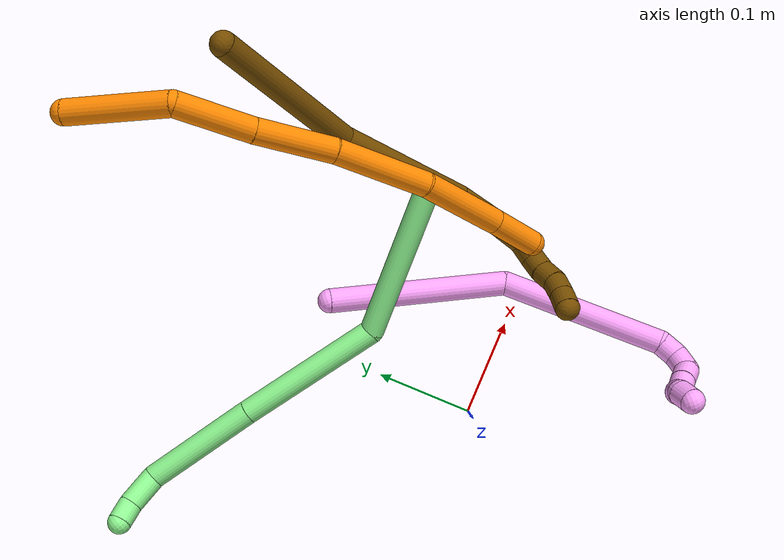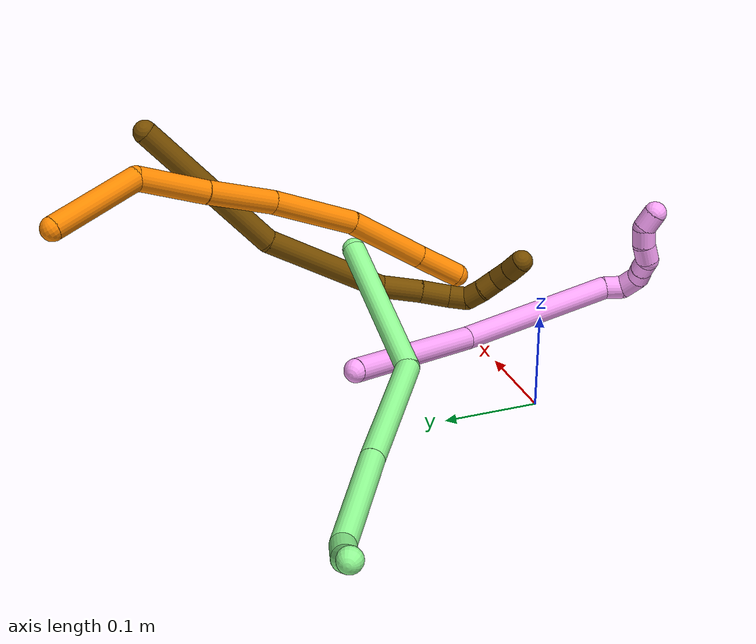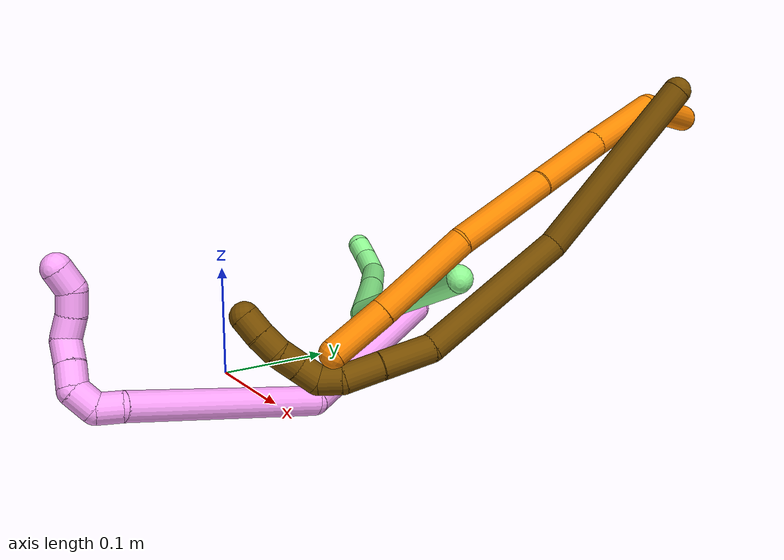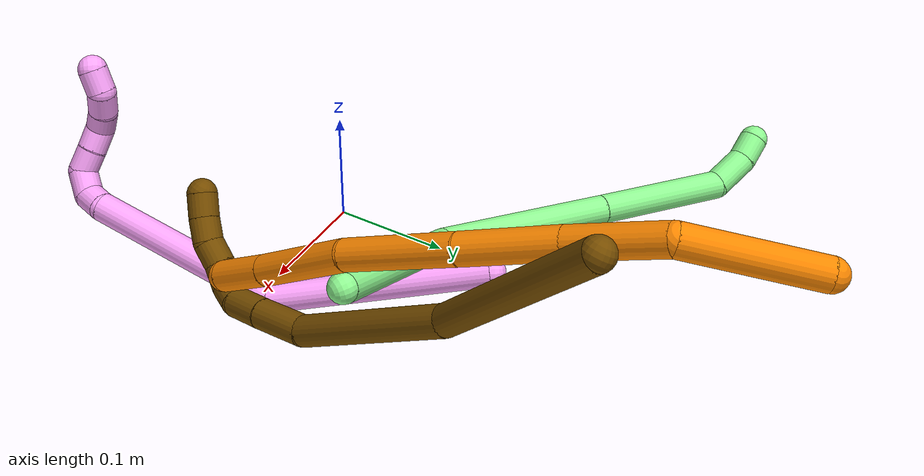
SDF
<sdf version="1.7">
 <world name="default">
  <model name="4">
   <static>0</static>
   <link name="4">
    <collision name="collision-cylinder-e_1_1_4">
     <pose>-0.000357 -0.034923 0.085769 0.386682 -0.003852 -0.000754</pose>
     <geometry><cylinder><radius>0.0125</radius><length>0.185214</length></cylinder></geometry>
     <surface>
      <friction><ode><mu>1.16</mu><mu2>1.16</mu2><slip1>0</slip1><slip2>0</slip2></ode></friction>
      <contact><ode><kp>1e+06</kp><kd>1</kd><max_vel>0</max_vel><min_depth>0.001</min_depth></ode></contact>
     </surface>
    </collision>
    <visual name="visual-cylinder-e_1_1_4">
     <pose>-0.000357 -0.034923 0.085769 0.386682 -0.003852 -0.000754</pose>
     <geometry><cylinder><radius>0.0125</radius><length>0.185214</length></cylinder></geometry>
     <material><ambient>1 0.65098 0.996078 1</ambient></material>
    </visual>
    <collision name="collision-cylinder-e_2_4_5">
     <pose>-0.049015 -0.099882 0.235244 0.440559 -0.601121 -0.138582</pose>
     <geometry><cylinder><radius>0.0125</radius><length>0.170806</length></cylinder></geometry>
     <surface>
      <friction><ode><mu>1.16</mu><mu2>1.16</mu2><slip1>0</slip1><slip2>0</slip2></ode></friction>
      <contact><ode><kp>1e+06</kp><kd>1</kd><max_vel>0</max_vel><min_depth>0.001</min_depth></ode></contact>
     </surface>
    </collision>
    <visual name="visual-cylinder-e_2_4_5">
     <pose>-0.049015 -0.099882 0.235244 0.440559 -0.601121 -0.138582</pose>
     <geometry><cylinder><radius>0.0125</radius><length>0.170806</length></cylinder></geometry>
     <material><ambient>1 0.65098 0.996078 1</ambient></material>
    </visual>
    <collision name="collision-cylinder-e_3_5_6">
     <pose>-0.103871 -0.136141 0.303951 0.893911 -0.687537 -0.339857</pose>
     <geometry><cylinder><radius>0.0125</radius><length>0.020659</length></cylinder></geometry>
     <surface>
      <friction><ode><mu>1.16</mu><mu2>1.16</mu2><slip1>0</slip1><slip2>0</slip2></ode></friction>
      <contact><ode><kp>1e+06</kp><kd>1</kd><max_vel>0</max_vel><min_depth>0.001</min_depth></ode></contact>
     </surface>
    </collision>
    <visual name="visual-cylinder-e_3_5_6">
     <pose>-0.103871 -0.136141 0.303951 0.893911 -0.687537 -0.339857</pose>
     <geometry><cylinder><radius>0.0125</radius><length>0.020659</length></cylinder></geometry>
     <material><ambient>1 0.65098 0.996078 1</ambient></material>
    </visual>
    <collision name="collision-cylinder-e_4_6_7">
     <pose>-0.121323 -0.142412 0.31094 0.024288 -1.39024 -0.020256</pose>
     <geometry><cylinder><radius>0.0125</radius><length>0.022152</length></cylinder></geometry>
     <surface>
      <friction><ode><mu>1.16</mu><mu2>1.16</mu2><slip1>0</slip1><slip2>0</slip2></ode></friction>
      <contact><ode><kp>1e+06</kp><kd>1</kd><max_vel>0</max_vel><min_depth>0.001</min_depth></ode></contact>
     </surface>
    </collision>
    <visual name="visual-cylinder-e_4_6_7">
     <pose>-0.121323 -0.142412 0.31094 0.024288 -1.39024 -0.020256</pose>
     <geometry><cylinder><radius>0.0125</radius><length>0.022152</length></cylinder></geometry>
     <material><ambient>1 0.65098 0.996078 1</ambient></material>
    </visual>
    <collision name="collision-cylinder-e_5_7_8">
     <pose>-0.140436 -0.138038 0.308599 -2.34567 -0.925332 1.74093</pose>
     <geometry><cylinder><radius>0.0125</radius><length>0.020573</length></cylinder></geometry>
     <surface>
      <friction><ode><mu>1.16</mu><mu2>1.16</mu2><slip1>0</slip1><slip2>0</slip2></ode></friction>
      <contact><ode><kp>1e+06</kp><kd>1</kd><max_vel>0</max_vel><min_depth>0.001</min_depth></ode></contact>
     </surface>
    </collision>
    <visual name="visual-cylinder-e_5_7_8">
     <pose>-0.140436 -0.138038 0.308599 -2.34567 -0.925332 1.74093</pose>
     <geometry><cylinder><radius>0.0125</radius><length>0.020573</length></cylinder></geometry>
     <material><ambient>1 0.65098 0.996078 1</ambient></material>
    </visual>
    <collision name="collision-cylinder-e_6_8_9">
     <pose>-0.157282 -0.129908 0.300121 -2.41204 -0.998043 1.9193</pose>
     <geometry><cylinder><radius>0.0125</radius><length>0.020535</length></cylinder></geometry>
     <surface>
      <friction><ode><mu>1.16</mu><mu2>1.16</mu2><slip1>0</slip1><slip2>0</slip2></ode></friction>
      <contact><ode><kp>1e+06</kp><kd>1</kd><max_vel>0</max_vel><min_depth>0.001</min_depth></ode></contact>
     </surface>
    </collision>
    <visual name="visual-cylinder-e_6_8_9">
     <pose>-0.157282 -0.129908 0.300121 -2.41204 -0.998043 1.9193</pose>
     <geometry><cylinder><radius>0.0125</radius><length>0.020535</length></cylinder></geometry>
     <material><ambient>1 0.65098 0.996078 1</ambient></material>
    </visual>
    <collision name="collision-cylinder-e_7_9_10">
     <pose>-0.170821 -0.11754 0.294761 -1.70991 -0.511629 0.584228</pose>
     <geometry><cylinder><radius>0.0125</radius><length>0.020056</length></cylinder></geometry>
     <surface>
      <friction><ode><mu>1.16</mu><mu2>1.16</mu2><slip1>0</slip1><slip2>0</slip2></ode></friction>
      <contact><ode><kp>1e+06</kp><kd>1</kd><max_vel>0</max_vel><min_depth>0.001</min_depth></ode></contact>
     </surface>
    </collision>
    <visual name="visual-cylinder-e_7_9_10">
     <pose>-0.170821 -0.11754 0.294761 -1.70991 -0.511629 0.584228</pose>
     <geometry><cylinder><radius>0.0125</radius><length>0.020056</length></cylinder></geometry>
     <material><ambient>1 0.65098 0.996078 1</ambient></material>
    </visual>
    <collision name="collision-cylinder-e_8_10_11">
     <pose>-0.181893 -0.101018 0.294038 -1.50864 -0.663879 0.626485</pose>
     <geometry><cylinder><radius>0.0125</radius><length>0.020004</length></cylinder></geometry>
     <surface>
      <friction><ode><mu>1.16</mu><mu2>1.16</mu2><slip1>0</slip1><slip2>0</slip2></ode></friction>
      <contact><ode><kp>1e+06</kp><kd>1</kd><max_vel>0</max_vel><min_depth>0.001</min_depth></ode></contact>
     </surface>
    </collision>
    <visual name="visual-cylinder-e_8_10_11">
     <pose>-0.181893 -0.101018 0.294038 -1.50864 -0.663879 0.626485</pose>
     <geometry><cylinder><radius>0.0125</radius><length>0.020004</length></cylinder></geometry>
     <material><ambient>1 0.65098 0.996078 1</ambient></material>
    </visual>
    <collision name="collision-cylinder-e_9_11_2">
     <pose>-0.196982 -0.089917 0.297666 -0.800947 -1.10291 0.509496</pose>
     <geometry><cylinder><radius>0.0125</radius><length>0.020001</length></cylinder></geometry>
     <surface>
      <friction><ode><mu>1.16</mu><mu2>1.16</mu2><slip1>0</slip1><slip2>0</slip2></ode></friction>
      <contact><ode><kp>1e+06</kp><kd>1</kd><max_vel>0</max_vel><min_depth>0.001</min_depth></ode></contact>
     </surface>
    </collision>
    <visual name="visual-cylinder-e_9_11_2">
     <pose>-0.196982 -0.089917 0.297666 -0.800947 -1.10291 0.509496</pose>
     <geometry><cylinder><radius>0.0125</radius><length>0.020001</length></cylinder></geometry>
     <material><ambient>1 0.65098 0.996078 1</ambient></material>
    </visual>
    <collision name="collision-sphere-2">
     <pose>-0.205907 -0.086679 0.300805 0 -0 0</pose>
     <geometry><sphere><radius>0.0125</radius></sphere></geometry>
     <surface>
      <friction><ode><mu>1.16</mu><mu2>1.16</mu2><slip1>0</slip1><slip2>0</slip2></ode></friction>
      <contact><ode><kp>1e+06</kp><kd>1</kd><max_vel>0</max_vel><min_depth>0.001</min_depth></ode></contact>
     </surface>
    </collision>
    <visual name="visual-sphere-2">
     <pose>-0.205907 -0.086679 0.300805 0 -0 0</pose>
     <geometry><sphere><radius>0.0125</radius></sphere></geometry>
     <material><ambient>1 0.65098 0.996078 1</ambient></material>
    </visual>
    <collision name="collision-sphere-11">
     <pose>-0.188056 -0.093156 0.294527 0 -0 0</pose>
     <geometry><sphere><radius>0.0125</radius></sphere></geometry>
     <surface>
      <friction><ode><mu>1.16</mu><mu2>1.16</mu2><slip1>0</slip1><slip2>0</slip2></ode></friction>
      <contact><ode><kp>1e+06</kp><kd>1</kd><max_vel>0</max_vel><min_depth>0.001</min_depth></ode></contact>
     </surface>
    </collision>
    <visual name="visual-sphere-11">
     <pose>-0.188056 -0.093156 0.294527 0 -0 0</pose>
     <geometry><sphere><radius>0.0125</radius></sphere></geometry>
     <material><ambient>1 0.65098 0.996078 1</ambient></material>
    </visual>
    <collision name="collision-sphere-10">
     <pose>-0.17573 -0.10888 0.293548 0 -0 0</pose>
     <geometry><sphere><radius>0.0125</radius></sphere></geometry>
     <surface>
      <friction><ode><mu>1.16</mu><mu2>1.16</mu2><slip1>0</slip1><slip2>0</slip2></ode></friction>
      <contact><ode><kp>1e+06</kp><kd>1</kd><max_vel>0</max_vel><min_depth>0.001</min_depth></ode></contact>
     </surface>
    </collision>
    <visual name="visual-sphere-10">
     <pose>-0.17573 -0.10888 0.293548 0 -0 0</pose>
     <geometry><sphere><radius>0.0125</radius></sphere></geometry>
     <material><ambient>1 0.65098 0.996078 1</ambient></material>
    </visual>
    <collision name="collision-sphere-9">
     <pose>-0.165911 -0.126199 0.295973 0 -0 0</pose>
     <geometry><sphere><radius>0.0125</radius></sphere></geometry>
     <surface>
      <friction><ode><mu>1.16</mu><mu2>1.16</mu2><slip1>0</slip1><slip2>0</slip2></ode></friction>
      <contact><ode><kp>1e+06</kp><kd>1</kd><max_vel>0</max_vel><min_depth>0.001</min_depth></ode></contact>
     </surface>
    </collision>
    <visual name="visual-sphere-9">
     <pose>-0.165911 -0.126199 0.295973 0 -0 0</pose>
     <geometry><sphere><radius>0.0125</radius></sphere></geometry>
     <material><ambient>1 0.65098 0.996078 1</ambient></material>
    </visual>
    <collision name="collision-sphere-4">
     <pose>-0.000713 -0.069847 0.171538 0 -0 0</pose>
     <geometry><sphere><radius>0.0125</radius></sphere></geometry>
     <surface>
      <friction><ode><mu>1.16</mu><mu2>1.16</mu2><slip1>0</slip1><slip2>0</slip2></ode></friction>
      <contact><ode><kp>1e+06</kp><kd>1</kd><max_vel>0</max_vel><min_depth>0.001</min_depth></ode></contact>
     </surface>
    </collision>
    <visual name="visual-sphere-4">
     <pose>-0.000713 -0.069847 0.171538 0 -0 0</pose>
     <geometry><sphere><radius>0.0125</radius></sphere></geometry>
     <material><ambient>1 0.65098 0.996078 1</ambient></material>
    </visual>
    <collision name="collision-sphere-1">
     <geometry><sphere><radius>0.0125</radius></sphere></geometry>
     <surface>
      <friction><ode><mu>1.16</mu><mu2>1.16</mu2><slip1>0</slip1><slip2>0</slip2></ode></friction>
      <contact><ode><kp>1e+06</kp><kd>1</kd><max_vel>0</max_vel><min_depth>0.001</min_depth></ode></contact>
     </surface>
    </collision>
    <visual name="visual-sphere-1">
     <geometry><sphere><radius>0.0125</radius></sphere></geometry>
     <material><ambient>1 0.65098 0.996078 1</ambient></material>
    </visual>
    <collision name="collision-sphere-8">
     <pose>-0.148653 -0.133617 0.304269 0 -0 0</pose>
     <geometry><sphere><radius>0.0125</radius></sphere></geometry>
     <surface>
      <friction><ode><mu>1.16</mu><mu2>1.16</mu2><slip1>0</slip1><slip2>0</slip2></ode></friction>
      <contact><ode><kp>1e+06</kp><kd>1</kd><max_vel>0</max_vel><min_depth>0.001</min_depth></ode></contact>
     </surface>
    </collision>
    <visual name="visual-sphere-8">
     <pose>-0.148653 -0.133617 0.304269 0 -0 0</pose>
     <geometry><sphere><radius>0.0125</radius></sphere></geometry>
     <material><ambient>1 0.65098 0.996078 1</ambient></material>
    </visual>
    <collision name="collision-sphere-5">
     <pose>-0.097316 -0.129918 0.298951 0 -0 0</pose>
     <geometry><sphere><radius>0.0125</radius></sphere></geometry>
     <surface>
      <friction><ode><mu>1.16</mu><mu2>1.16</mu2><slip1>0</slip1><slip2>0</slip2></ode></friction>
      <contact><ode><kp>1e+06</kp><kd>1</kd><max_vel>0</max_vel><min_depth>0.001</min_depth></ode></contact>
     </surface>
    </collision>
    <visual name="visual-sphere-5">
     <pose>-0.097316 -0.129918 0.298951 0 -0 0</pose>
     <geometry><sphere><radius>0.0125</radius></sphere></geometry>
     <material><ambient>1 0.65098 0.996078 1</ambient></material>
    </visual>
    <collision name="collision-sphere-6">
     <pose>-0.110427 -0.142363 0.308951 0 -0 0</pose>
     <geometry><sphere><radius>0.0125</radius></sphere></geometry>
     <surface>
      <friction><ode><mu>1.16</mu><mu2>1.16</mu2><slip1>0</slip1><slip2>0</slip2></ode></friction>
      <contact><ode><kp>1e+06</kp><kd>1</kd><max_vel>0</max_vel><min_depth>0.001</min_depth></ode></contact>
     </surface>
    </collision>
    <visual name="visual-sphere-6">
     <pose>-0.110427 -0.142363 0.308951 0 -0 0</pose>
     <geometry><sphere><radius>0.0125</radius></sphere></geometry>
     <material><ambient>1 0.65098 0.996078 1</ambient></material>
    </visual>
    <collision name="collision-sphere-7">
     <pose>-0.132219 -0.14246 0.312928 0 -0 0</pose>
     <geometry><sphere><radius>0.0125</radius></sphere></geometry>
     <surface>
      <friction><ode><mu>1.16</mu><mu2>1.16</mu2><slip1>0</slip1><slip2>0</slip2></ode></friction>
      <contact><ode><kp>1e+06</kp><kd>1</kd><max_vel>0</max_vel><min_depth>0.001</min_depth></ode></contact>
     </surface>
    </collision>
    <visual name="visual-sphere-7">
     <pose>-0.132219 -0.14246 0.312928 0 -0 0</pose>
     <geometry><sphere><radius>0.0125</radius></sphere></geometry>
     <material><ambient>1 0.65098 0.996078 1</ambient></material>
    </visual>
    <inertial>
     <pose>-0.06079 -0.08236 0.198986 0 -0 0</pose>
     <mass>0.5</mass>
     <inertia>
      <ixx>0.000823</ixx>
      <ixy>0</ixy>
      <ixz>0</ixz>
      <iyy>0.000844</iyy>
      <iyz>0</iyz>
      <izz>0.00062</izz>
     </inertia>
    </inertial>
   </link>
   <pose>0.051737 0.177241 0.04627 1.43586 0.713439 0.669869</pose>
  </model>
  <model name="12">
   <static>0</static>
   <link name="12">
    <collision name="collision-cylinder-e_1_1_4">
     <pose>0.013665 -0.06474 -0.057829 2.29987 0.156132 0.346031</pose>
     <geometry><cylinder><radius>0.0125</radius><length>0.175752</length></cylinder></geometry>
     <surface>
      <friction><ode><mu>1.16</mu><mu2>1.16</mu2><slip1>0</slip1><slip2>0</slip2></ode></friction>
      <contact><ode><kp>1e+06</kp><kd>1</kd><max_vel>0</max_vel><min_depth>0.001</min_depth></ode></contact>
     </surface>
    </collision>
    <visual name="visual-cylinder-e_1_1_4">
     <pose>0.013665 -0.06474 -0.057829 2.29987 0.156132 0.346031</pose>
     <geometry><cylinder><radius>0.0125</radius><length>0.175752</length></cylinder></geometry>
     <material><ambient>0.466667 0.301961 0 1</ambient></material>
    </visual>
    <collision name="collision-cylinder-e_2_4_5">
     <pose>0.060432 -0.179286 -0.156459 2.25714 0.474898 0.944998</pose>
     <geometry><cylinder><radius>0.0125</radius><length>0.144792</length></cylinder></geometry>
     <surface>
      <friction><ode><mu>1.16</mu><mu2>1.16</mu2><slip1>0</slip1><slip2>0</slip2></ode></friction>
      <contact><ode><kp>1e+06</kp><kd>1</kd><max_vel>0</max_vel><min_depth>0.001</min_depth></ode></contact>
     </surface>
    </collision>
    <visual name="visual-cylinder-e_2_4_5">
     <pose>0.060432 -0.179286 -0.156459 2.25714 0.474898 0.944998</pose>
     <geometry><cylinder><radius>0.0125</radius><length>0.144792</length></cylinder></geometry>
     <material><ambient>0.466667 0.301961 0 1</ambient></material>
    </visual>
    <collision name="collision-cylinder-e_3_5_6">
     <pose>0.107313 -0.246529 -0.203212 1.89976 0.642085 0.870366</pose>
     <geometry><cylinder><radius>0.0125</radius><length>0.046012</length></cylinder></geometry>
     <surface>
      <friction><ode><mu>1.16</mu><mu2>1.16</mu2><slip1>0</slip1><slip2>0</slip2></ode></friction>
      <contact><ode><kp>1e+06</kp><kd>1</kd><max_vel>0</max_vel><min_depth>0.001</min_depth></ode></contact>
     </surface>
    </collision>
    <visual name="visual-cylinder-e_3_5_6">
     <pose>0.107313 -0.246529 -0.203212 1.89976 0.642085 0.870366</pose>
     <geometry><cylinder><radius>0.0125</radius><length>0.046012</length></cylinder></geometry>
     <material><ambient>0.466667 0.301961 0 1</ambient></material>
    </visual>
    <collision name="collision-cylinder-e_4_6_7">
     <pose>0.130197 -0.27721 -0.213286 1.87248 0.580931 0.771466</pose>
     <geometry><cylinder><radius>0.0125</radius><length>0.033187</length></cylinder></geometry>
     <surface>
      <friction><ode><mu>1.16</mu><mu2>1.16</mu2><slip1>0</slip1><slip2>0</slip2></ode></friction>
      <contact><ode><kp>1e+06</kp><kd>1</kd><max_vel>0</max_vel><min_depth>0.001</min_depth></ode></contact>
     </surface>
    </collision>
    <visual name="visual-cylinder-e_4_6_7">
     <pose>0.130197 -0.27721 -0.213286 1.87248 0.580931 0.771466</pose>
     <geometry><cylinder><radius>0.0125</radius><length>0.033187</length></cylinder></geometry>
     <material><ambient>0.466667 0.301961 0 1</ambient></material>
    </visual>
    <collision name="collision-cylinder-e_5_7_8">
     <pose>0.143694 -0.299509 -0.216268 1.44557 0.448452 0.397005</pose>
     <geometry><cylinder><radius>0.0125</radius><length>0.020255</length></cylinder></geometry>
     <surface>
      <friction><ode><mu>1.16</mu><mu2>1.16</mu2><slip1>0</slip1><slip2>0</slip2></ode></friction>
      <contact><ode><kp>1e+06</kp><kd>1</kd><max_vel>0</max_vel><min_depth>0.001</min_depth></ode></contact>
     </surface>
    </collision>
    <visual name="visual-cylinder-e_5_7_8">
     <pose>0.143694 -0.299509 -0.216268 1.44557 0.448452 0.397005</pose>
     <geometry><cylinder><radius>0.0125</radius><length>0.020255</length></cylinder></geometry>
     <material><ambient>0.466667 0.301961 0 1</ambient></material>
    </visual>
    <collision name="collision-cylinder-e_6_8_9">
     <pose>0.154217 -0.313756 -0.209174 0.717138 0.66003 0.255352</pose>
     <geometry><cylinder><radius>0.0125</radius><length>0.020001</length></cylinder></geometry>
     <surface>
      <friction><ode><mu>1.16</mu><mu2>1.16</mu2><slip1>0</slip1><slip2>0</slip2></ode></friction>
      <contact><ode><kp>1e+06</kp><kd>1</kd><max_vel>0</max_vel><min_depth>0.001</min_depth></ode></contact>
     </surface>
    </collision>
    <visual name="visual-cylinder-e_6_8_9">
     <pose>0.154217 -0.313756 -0.209174 0.717138 0.66003 0.255352</pose>
     <geometry><cylinder><radius>0.0125</radius><length>0.020001</length></cylinder></geometry>
     <material><ambient>0.466667 0.301961 0 1</ambient></material>
    </visual>
    <collision name="collision-cylinder-e_7_9_10">
     <pose>0.167749 -0.323059 -0.197895 0.657381 0.83312 0.299548</pose>
     <geometry><cylinder><radius>0.0125</radius><length>0.02</length></cylinder></geometry>
     <surface>
      <friction><ode><mu>1.16</mu><mu2>1.16</mu2><slip1>0</slip1><slip2>0</slip2></ode></friction>
      <contact><ode><kp>1e+06</kp><kd>1</kd><max_vel>0</max_vel><min_depth>0.001</min_depth></ode></contact>
     </surface>
    </collision>
    <visual name="visual-cylinder-e_7_9_10">
     <pose>0.167749 -0.323059 -0.197895 0.657381 0.83312 0.299548</pose>
     <geometry><cylinder><radius>0.0125</radius><length>0.02</length></cylinder></geometry>
     <material><ambient>0.466667 0.301961 0 1</ambient></material>
    </visual>
    <collision name="collision-cylinder-e_8_10_11">
     <pose>0.180246 -0.331584 -0.185186 0.538889 0.534745 0.15101</pose>
     <geometry><cylinder><radius>0.0125</radius><length>0.02</length></cylinder></geometry>
     <surface>
      <friction><ode><mu>1.16</mu><mu2>1.16</mu2><slip1>0</slip1><slip2>0</slip2></ode></friction>
      <contact><ode><kp>1e+06</kp><kd>1</kd><max_vel>0</max_vel><min_depth>0.001</min_depth></ode></contact>
     </surface>
    </collision>
    <visual name="visual-cylinder-e_8_10_11">
     <pose>0.180246 -0.331584 -0.185186 0.538889 0.534745 0.15101</pose>
     <geometry><cylinder><radius>0.0125</radius><length>0.02</length></cylinder></geometry>
     <material><ambient>0.466667 0.301961 0 1</ambient></material>
    </visual>
    <collision name="collision-cylinder-e_9_11_2">
     <pose>0.189822 -0.339725 -0.169674 0.429841 0.46447 0.103161</pose>
     <geometry><cylinder><radius>0.0125</radius><length>0.02</length></cylinder></geometry>
     <surface>
      <friction><ode><mu>1.16</mu><mu2>1.16</mu2><slip1>0</slip1><slip2>0</slip2></ode></friction>
      <contact><ode><kp>1e+06</kp><kd>1</kd><max_vel>0</max_vel><min_depth>0.001</min_depth></ode></contact>
     </surface>
    </collision>
    <visual name="visual-cylinder-e_9_11_2">
     <pose>0.189822 -0.339725 -0.169674 0.429841 0.46447 0.103161</pose>
     <geometry><cylinder><radius>0.0125</radius><length>0.02</length></cylinder></geometry>
     <material><ambient>0.466667 0.301961 0 1</ambient></material>
    </visual>
    <collision name="collision-sphere-2">
     <pose>0.194301 -0.343451 -0.161547 0 -0 0</pose>
     <geometry><sphere><radius>0.0125</radius></sphere></geometry>
     <surface>
      <friction><ode><mu>1.16</mu><mu2>1.16</mu2><slip1>0</slip1><slip2>0</slip2></ode></friction>
      <contact><ode><kp>1e+06</kp><kd>1</kd><max_vel>0</max_vel><min_depth>0.001</min_depth></ode></contact>
     </surface>
    </collision>
    <visual name="visual-sphere-2">
     <pose>0.194301 -0.343451 -0.161547 0 -0 0</pose>
     <geometry><sphere><radius>0.0125</radius></sphere></geometry>
     <material><ambient>0.466667 0.301961 0 1</ambient></material>
    </visual>
    <collision name="collision-sphere-11">
     <pose>0.185342 -0.335999 -0.177802 0 -0 0</pose>
     <geometry><sphere><radius>0.0125</radius></sphere></geometry>
     <surface>
      <friction><ode><mu>1.16</mu><mu2>1.16</mu2><slip1>0</slip1><slip2>0</slip2></ode></friction>
      <contact><ode><kp>1e+06</kp><kd>1</kd><max_vel>0</max_vel><min_depth>0.001</min_depth></ode></contact>
     </surface>
    </collision>
    <visual name="visual-sphere-11">
     <pose>0.185342 -0.335999 -0.177802 0 -0 0</pose>
     <geometry><sphere><radius>0.0125</radius></sphere></geometry>
     <material><ambient>0.466667 0.301961 0 1</ambient></material>
    </visual>
    <collision name="collision-sphere-10">
     <pose>0.17515 -0.327168 -0.192571 0 -0 0</pose>
     <geometry><sphere><radius>0.0125</radius></sphere></geometry>
     <surface>
      <friction><ode><mu>1.16</mu><mu2>1.16</mu2><slip1>0</slip1><slip2>0</slip2></ode></friction>
      <contact><ode><kp>1e+06</kp><kd>1</kd><max_vel>0</max_vel><min_depth>0.001</min_depth></ode></contact>
     </surface>
    </collision>
    <visual name="visual-sphere-10">
     <pose>0.17515 -0.327168 -0.192571 0 -0 0</pose>
     <geometry><sphere><radius>0.0125</radius></sphere></geometry>
     <material><ambient>0.466667 0.301961 0 1</ambient></material>
    </visual>
    <collision name="collision-sphere-9">
     <pose>0.160349 -0.318949 -0.203219 0 -0 0</pose>
     <geometry><sphere><radius>0.0125</radius></sphere></geometry>
     <surface>
      <friction><ode><mu>1.16</mu><mu2>1.16</mu2><slip1>0</slip1><slip2>0</slip2></ode></friction>
      <contact><ode><kp>1e+06</kp><kd>1</kd><max_vel>0</max_vel><min_depth>0.001</min_depth></ode></contact>
     </surface>
    </collision>
    <visual name="visual-sphere-9">
     <pose>0.160349 -0.318949 -0.203219 0 -0 0</pose>
     <geometry><sphere><radius>0.0125</radius></sphere></geometry>
     <material><ambient>0.466667 0.301961 0 1</ambient></material>
    </visual>
    <collision name="collision-sphere-4">
     <pose>0.027329 -0.12948 -0.115658 0 -0 0</pose>
     <geometry><sphere><radius>0.0125</radius></sphere></geometry>
     <surface>
      <friction><ode><mu>1.16</mu><mu2>1.16</mu2><slip1>0</slip1><slip2>0</slip2></ode></friction>
      <contact><ode><kp>1e+06</kp><kd>1</kd><max_vel>0</max_vel><min_depth>0.001</min_depth></ode></contact>
     </surface>
    </collision>
    <visual name="visual-sphere-4">
     <pose>0.027329 -0.12948 -0.115658 0 -0 0</pose>
     <geometry><sphere><radius>0.0125</radius></sphere></geometry>
     <material><ambient>0.466667 0.301961 0 1</ambient></material>
    </visual>
    <collision name="collision-sphere-1">
     <geometry><sphere><radius>0.0125</radius></sphere></geometry>
     <surface>
      <friction><ode><mu>1.16</mu><mu2>1.16</mu2><slip1>0</slip1><slip2>0</slip2></ode></friction>
      <contact><ode><kp>1e+06</kp><kd>1</kd><max_vel>0</max_vel><min_depth>0.001</min_depth></ode></contact>
     </surface>
    </collision>
    <visual name="visual-sphere-1">
     <geometry><sphere><radius>0.0125</radius></sphere></geometry>
     <material><ambient>0.466667 0.301961 0 1</ambient></material>
    </visual>
    <collision name="collision-sphere-8">
     <pose>0.148085 -0.308564 -0.215128 0 -0 0</pose>
     <geometry><sphere><radius>0.0125</radius></sphere></geometry>
     <surface>
      <friction><ode><mu>1.16</mu><mu2>1.16</mu2><slip1>0</slip1><slip2>0</slip2></ode></friction>
      <contact><ode><kp>1e+06</kp><kd>1</kd><max_vel>0</max_vel><min_depth>0.001</min_depth></ode></contact>
     </surface>
    </collision>
    <visual name="visual-sphere-8">
     <pose>0.148085 -0.308564 -0.215128 0 -0 0</pose>
     <geometry><sphere><radius>0.0125</radius></sphere></geometry>
     <material><ambient>0.466667 0.301961 0 1</ambient></material>
    </visual>
    <collision name="collision-sphere-5">
     <pose>0.093535 -0.229092 -0.19726 0 -0 0</pose>
     <geometry><sphere><radius>0.0125</radius></sphere></geometry>
     <surface>
      <friction><ode><mu>1.16</mu><mu2>1.16</mu2><slip1>0</slip1><slip2>0</slip2></ode></friction>
      <contact><ode><kp>1e+06</kp><kd>1</kd><max_vel>0</max_vel><min_depth>0.001</min_depth></ode></contact>
     </surface>
    </collision>
    <visual name="visual-sphere-5">
     <pose>0.093535 -0.229092 -0.19726 0 -0 0</pose>
     <geometry><sphere><radius>0.0125</radius></sphere></geometry>
     <material><ambient>0.466667 0.301961 0 1</ambient></material>
    </visual>
    <collision name="collision-sphere-6">
     <pose>0.12109 -0.263965 -0.209165 0 -0 0</pose>
     <geometry><sphere><radius>0.0125</radius></sphere></geometry>
     <surface>
      <friction><ode><mu>1.16</mu><mu2>1.16</mu2><slip1>0</slip1><slip2>0</slip2></ode></friction>
      <contact><ode><kp>1e+06</kp><kd>1</kd><max_vel>0</max_vel><min_depth>0.001</min_depth></ode></contact>
     </surface>
    </collision>
    <visual name="visual-sphere-6">
     <pose>0.12109 -0.263965 -0.209165 0 -0 0</pose>
     <geometry><sphere><radius>0.0125</radius></sphere></geometry>
     <material><ambient>0.466667 0.301961 0 1</ambient></material>
    </visual>
    <collision name="collision-sphere-7">
     <pose>0.139303 -0.290455 -0.217408 0 -0 0</pose>
     <geometry><sphere><radius>0.0125</radius></sphere></geometry>
     <surface>
      <friction><ode><mu>1.16</mu><mu2>1.16</mu2><slip1>0</slip1><slip2>0</slip2></ode></friction>
      <contact><ode><kp>1e+06</kp><kd>1</kd><max_vel>0</max_vel><min_depth>0.001</min_depth></ode></contact>
     </surface>
    </collision>
    <visual name="visual-sphere-7">
     <pose>0.139303 -0.290455 -0.217408 0 -0 0</pose>
     <geometry><sphere><radius>0.0125</radius></sphere></geometry>
     <material><ambient>0.466667 0.301961 0 1</ambient></material>
    </visual>
    <inertial>
     <pose>0.074323 -0.18022 -0.137731 0 -0 0</pose>
     <mass>0.5</mass>
     <inertia><ixx>0.00094</ixx><ixy>0</ixy><ixz>0</ixz><iyy>4e-05</iyy><iyz>0</iyz><izz>0.000317</izz></inertia>
    </inertial>
   </link>
   <pose>0.224576 0.339384 0.261055 0.400821 -0.464106 -1.09657</pose>
  </model>
  <model name="13">
   <static>0</static>
   <link name="13">
    <collision name="collision-cylinder-e_1_1_4">
     <pose>-0.04841 0.025291 0.062239 -0.385973 -0.624403 0.125978</pose>
     <geometry><cylinder><radius>0.0125</radius><length>0.165613</length></cylinder></geometry>
     <surface>
      <friction><ode><mu>1.16</mu><mu2>1.16</mu2><slip1>0</slip1><slip2>0</slip2></ode></friction>
      <contact><ode><kp>1e+06</kp><kd>1</kd><max_vel>0</max_vel><min_depth>0.001</min_depth></ode></contact>
     </surface>
    </collision>
    <visual name="visual-cylinder-e_1_1_4">
     <pose>-0.04841 0.025291 0.062239 -0.385973 -0.624403 0.125978</pose>
     <geometry><cylinder><radius>0.0125</radius><length>0.165613</length></cylinder></geometry>
     <material><ambient>0.564706 0.984314 0.572549 1</ambient></material>
    </visual>
    <collision name="collision-cylinder-e_2_4_5">
     <pose>-0.095248 0.066808 0.19942 -0.213218 0.020493 -0.002193</pose>
     <geometry><cylinder><radius>0.0125</radius><length>0.153387</length></cylinder></geometry>
     <surface>
      <friction><ode><mu>1.16</mu><mu2>1.16</mu2><slip1>0</slip1><slip2>0</slip2></ode></friction>
      <contact><ode><kp>1e+06</kp><kd>1</kd><max_vel>0</max_vel><min_depth>0.001</min_depth></ode></contact>
     </surface>
    </collision>
    <visual name="visual-cylinder-e_2_4_5">
     <pose>-0.095248 0.066808 0.19942 -0.213218 0.020493 -0.002193</pose>
     <geometry><cylinder><radius>0.0125</radius><length>0.153387</length></cylinder></geometry>
     <material><ambient>0.564706 0.984314 0.572549 1</ambient></material>
    </visual>
    <collision name="collision-cylinder-e_3_5_6">
     <pose>-0.094186 0.096344 0.333977 -0.219675 -0.008344 0.00092</pose>
     <geometry><cylinder><radius>0.0125</radius><length>0.122171</length></cylinder></geometry>
     <surface>
      <friction><ode><mu>1.16</mu><mu2>1.16</mu2><slip1>0</slip1><slip2>0</slip2></ode></friction>
      <contact><ode><kp>1e+06</kp><kd>1</kd><max_vel>0</max_vel><min_depth>0.001</min_depth></ode></contact>
     </surface>
    </collision>
    <visual name="visual-cylinder-e_3_5_6">
     <pose>-0.094186 0.096344 0.333977 -0.219675 -0.008344 0.00092</pose>
     <geometry><cylinder><radius>0.0125</radius><length>0.122171</length></cylinder></geometry>
     <material><ambient>0.564706 0.984314 0.572549 1</ambient></material>
    </visual>
    <collision name="collision-cylinder-e_4_6_7">
     <pose>-0.096979 0.105072 0.410991 0.257567 -0.126243 -0.01637</pose>
     <geometry><cylinder><radius>0.0125</radius><length>0.036273</length></cylinder></geometry>
     <surface>
      <friction><ode><mu>1.16</mu><mu2>1.16</mu2><slip1>0</slip1><slip2>0</slip2></ode></friction>
      <contact><ode><kp>1e+06</kp><kd>1</kd><max_vel>0</max_vel><min_depth>0.001</min_depth></ode></contact>
     </surface>
    </collision>
    <visual name="visual-cylinder-e_4_6_7">
     <pose>-0.096979 0.105072 0.410991 0.257567 -0.126243 -0.01637</pose>
     <geometry><cylinder><radius>0.0125</radius><length>0.036273</length></cylinder></geometry>
     <material><ambient>0.564706 0.984314 0.572549 1</ambient></material>
    </visual>
    <collision name="collision-cylinder-e_5_7_2">
     <pose>-0.101328 0.094556 0.437755 0.564702 -0.184164 -0.053565</pose>
     <geometry><cylinder><radius>0.0125</radius><length>0.022556</length></cylinder></geometry>
     <surface>
      <friction><ode><mu>1.16</mu><mu2>1.16</mu2><slip1>0</slip1><slip2>0</slip2></ode></friction>
      <contact><ode><kp>1e+06</kp><kd>1</kd><max_vel>0</max_vel><min_depth>0.001</min_depth></ode></contact>
     </surface>
    </collision>
    <visual name="visual-cylinder-e_5_7_2">
     <pose>-0.101328 0.094556 0.437755 0.564702 -0.184164 -0.053565</pose>
     <geometry><cylinder><radius>0.0125</radius><length>0.022556</length></cylinder></geometry>
     <material><ambient>0.564706 0.984314 0.572549 1</ambient></material>
    </visual>
    <collision name="collision-sphere-2">
     <pose>-0.103393 0.088622 0.447121 0 -0 0</pose>
     <geometry><sphere><radius>0.0125</radius></sphere></geometry>
     <surface>
      <friction><ode><mu>1.16</mu><mu2>1.16</mu2><slip1>0</slip1><slip2>0</slip2></ode></friction>
      <contact><ode><kp>1e+06</kp><kd>1</kd><max_vel>0</max_vel><min_depth>0.001</min_depth></ode></contact>
     </surface>
    </collision>
    <visual name="visual-sphere-2">
     <pose>-0.103393 0.088622 0.447121 0 -0 0</pose>
     <geometry><sphere><radius>0.0125</radius></sphere></geometry>
     <material><ambient>0.564706 0.984314 0.572549 1</ambient></material>
    </visual>
    <collision name="collision-sphere-7">
     <pose>-0.099263 0.100489 0.428389 0 -0 0</pose>
     <geometry><sphere><radius>0.0125</radius></sphere></geometry>
     <surface>
      <friction><ode><mu>1.16</mu><mu2>1.16</mu2><slip1>0</slip1><slip2>0</slip2></ode></friction>
      <contact><ode><kp>1e+06</kp><kd>1</kd><max_vel>0</max_vel><min_depth>0.001</min_depth></ode></contact>
     </surface>
    </collision>
    <visual name="visual-sphere-7">
     <pose>-0.099263 0.100489 0.428389 0 -0 0</pose>
     <geometry><sphere><radius>0.0125</radius></sphere></geometry>
     <material><ambient>0.564706 0.984314 0.572549 1</ambient></material>
    </visual>
    <collision name="collision-sphere-6">
     <pose>-0.094696 0.109655 0.393592 0 -0 0</pose>
     <geometry><sphere><radius>0.0125</radius></sphere></geometry>
     <surface>
      <friction><ode><mu>1.16</mu><mu2>1.16</mu2><slip1>0</slip1><slip2>0</slip2></ode></friction>
      <contact><ode><kp>1e+06</kp><kd>1</kd><max_vel>0</max_vel><min_depth>0.001</min_depth></ode></contact>
     </surface>
    </collision>
    <visual name="visual-sphere-6">
     <pose>-0.094696 0.109655 0.393592 0 -0 0</pose>
     <geometry><sphere><radius>0.0125</radius></sphere></geometry>
     <material><ambient>0.564706 0.984314 0.572549 1</ambient></material>
    </visual>
    <collision name="collision-sphere-5">
     <pose>-0.093676 0.083034 0.274361 0 -0 0</pose>
     <geometry><sphere><radius>0.0125</radius></sphere></geometry>
     <surface>
      <friction><ode><mu>1.16</mu><mu2>1.16</mu2><slip1>0</slip1><slip2>0</slip2></ode></friction>
      <contact><ode><kp>1e+06</kp><kd>1</kd><max_vel>0</max_vel><min_depth>0.001</min_depth></ode></contact>
     </surface>
    </collision>
    <visual name="visual-sphere-5">
     <pose>-0.093676 0.083034 0.274361 0 -0 0</pose>
     <geometry><sphere><radius>0.0125</radius></sphere></geometry>
     <material><ambient>0.564706 0.984314 0.572549 1</ambient></material>
    </visual>
    <collision name="collision-sphere-1">
     <geometry><sphere><radius>0.0125</radius></sphere></geometry>
     <surface>
      <friction><ode><mu>1.16</mu><mu2>1.16</mu2><slip1>0</slip1><slip2>0</slip2></ode></friction>
      <contact><ode><kp>1e+06</kp><kd>1</kd><max_vel>0</max_vel><min_depth>0.001</min_depth></ode></contact>
     </surface>
    </collision>
    <visual name="visual-sphere-1">
     <geometry><sphere><radius>0.0125</radius></sphere></geometry>
     <material><ambient>0.564706 0.984314 0.572549 1</ambient></material>
    </visual>
    <collision name="collision-sphere-4">
     <pose>-0.096819 0.050583 0.124479 0 -0 0</pose>
     <geometry><sphere><radius>0.0125</radius></sphere></geometry>
     <surface>
      <friction><ode><mu>1.16</mu><mu2>1.16</mu2><slip1>0</slip1><slip2>0</slip2></ode></friction>
      <contact><ode><kp>1e+06</kp><kd>1</kd><max_vel>0</max_vel><min_depth>0.001</min_depth></ode></contact>
     </surface>
    </collision>
    <visual name="visual-sphere-4">
     <pose>-0.096819 0.050583 0.124479 0 -0 0</pose>
     <geometry><sphere><radius>0.0125</radius></sphere></geometry>
     <material><ambient>0.564706 0.984314 0.572549 1</ambient></material>
    </visual>
    <inertial>
     <pose>-0.079874 0.064301 0.212961 0 -0 0</pose>
     <mass>0.5</mass>
     <inertia>
      <ixx>0.000811</ixx>
      <ixy>0</ixy>
      <ixz>0</ixz>
      <iyy>0.000869</iyy>
      <iyz>0</iyz>
      <izz>4.2e-05</izz>
     </inertia>
    </inertial>
   </link>
   <pose>0.191037 0.128888 0.1132 -1.47851 -0.316616 1.03478</pose>
  </model>
  <model name="19">
   <static>0</static>
   <link name="19">
    <collision name="collision-cylinder-e_1_1_4">
     <pose>0.024345 -0.044723 -0.009775 1.78597 0.488766 0.600763</pose>
     <geometry><cylinder><radius>0.0125</radius><length>0.103699</length></cylinder></geometry>
     <surface>
      <friction><ode><mu>1.16</mu><mu2>1.16</mu2><slip1>0</slip1><slip2>0</slip2></ode></friction>
      <contact><ode><kp>1e+06</kp><kd>1</kd><max_vel>0</max_vel><min_depth>0.001</min_depth></ode></contact>
     </surface>
    </collision>
    <visual name="visual-cylinder-e_1_1_4">
     <pose>0.024345 -0.044723 -0.009775 1.78597 0.488766 0.600763</pose>
     <geometry><cylinder><radius>0.0125</radius><length>0.103699</length></cylinder></geometry>
     <material><ambient>0.996078 0.537255 0 1</ambient></material>
    </visual>
    <collision name="collision-cylinder-e_2_4_5">
     <pose>0.056668 -0.113869 -0.048153 2.43487 0.208989 0.55406</pose>
     <geometry><cylinder><radius>0.0125</radius><length>0.076898</length></cylinder></geometry>
     <surface>
      <friction><ode><mu>1.16</mu><mu2>1.16</mu2><slip1>0</slip1><slip2>0</slip2></ode></friction>
      <contact><ode><kp>1e+06</kp><kd>1</kd><max_vel>0</max_vel><min_depth>0.001</min_depth></ode></contact>
     </surface>
    </collision>
    <visual name="visual-cylinder-e_2_4_5">
     <pose>0.056668 -0.113869 -0.048153 2.43487 0.208989 0.55406</pose>
     <geometry><cylinder><radius>0.0125</radius><length>0.076898</length></cylinder></geometry>
     <material><ambient>0.996078 0.537255 0 1</ambient></material>
    </visual>
    <collision name="collision-cylinder-e_3_5_6">
     <pose>0.075663 -0.16356 -0.104946 2.4108 0.28324 0.713448</pose>
     <geometry><cylinder><radius>0.0125</radius><length>0.078854</length></cylinder></geometry>
     <surface>
      <friction><ode><mu>1.16</mu><mu2>1.16</mu2><slip1>0</slip1><slip2>0</slip2></ode></friction>
      <contact><ode><kp>1e+06</kp><kd>1</kd><max_vel>0</max_vel><min_depth>0.001</min_depth></ode></contact>
     </surface>
    </collision>
    <visual name="visual-cylinder-e_3_5_6">
     <pose>0.075663 -0.16356 -0.104946 2.4108 0.28324 0.713448</pose>
     <geometry><cylinder><radius>0.0125</radius><length>0.078854</length></cylinder></geometry>
     <material><ambient>0.996078 0.537255 0 1</ambient></material>
    </visual>
    <collision name="collision-cylinder-e_4_6_7">
     <pose>0.095526 -0.218335 -0.170842 2.47758 0.182653 0.519272</pose>
     <geometry><cylinder><radius>0.0125</radius><length>0.097379</length></cylinder></geometry>
     <surface>
      <friction><ode><mu>1.16</mu><mu2>1.16</mu2><slip1>0</slip1><slip2>0</slip2></ode></friction>
      <contact><ode><kp>1e+06</kp><kd>1</kd><max_vel>0</max_vel><min_depth>0.001</min_depth></ode></contact>
     </surface>
    </collision>
    <visual name="visual-cylinder-e_4_6_7">
     <pose>0.095526 -0.218335 -0.170842 2.47758 0.182653 0.519272</pose>
     <geometry><cylinder><radius>0.0125</radius><length>0.097379</length></cylinder></geometry>
     <material><ambient>0.996078 0.537255 0 1</ambient></material>
    </visual>
    <collision name="collision-cylinder-e_5_7_8">
     <pose>0.108154 -0.268762 -0.24842 2.65838 0.083849 0.337235</pose>
     <geometry><cylinder><radius>0.0125</radius><length>0.090371</length></cylinder></geometry>
     <surface>
      <friction><ode><mu>1.16</mu><mu2>1.16</mu2><slip1>0</slip1><slip2>0</slip2></ode></friction>
      <contact><ode><kp>1e+06</kp><kd>1</kd><max_vel>0</max_vel><min_depth>0.001</min_depth></ode></contact>
     </surface>
    </collision>
    <visual name="visual-cylinder-e_5_7_8">
     <pose>0.108154 -0.268762 -0.24842 2.65838 0.083849 0.337235</pose>
     <geometry><cylinder><radius>0.0125</radius><length>0.090371</length></cylinder></geometry>
     <material><ambient>0.996078 0.537255 0 1</ambient></material>
    </visual>
    <collision name="collision-cylinder-e_6_8_2">
     <pose>0.113368 -0.302405 -0.311379 2.63798 0.054181 0.20988</pose>
     <geometry><cylinder><radius>0.0125</radius><length>0.052799</length></cylinder></geometry>
     <surface>
      <friction><ode><mu>1.16</mu><mu2>1.16</mu2><slip1>0</slip1><slip2>0</slip2></ode></friction>
      <contact><ode><kp>1e+06</kp><kd>1</kd><max_vel>0</max_vel><min_depth>0.001</min_depth></ode></contact>
     </surface>
    </collision>
    <visual name="visual-cylinder-e_6_8_2">
     <pose>0.113368 -0.302405 -0.311379 2.63798 0.054181 0.20988</pose>
     <geometry><cylinder><radius>0.0125</radius><length>0.052799</length></cylinder></geometry>
     <material><ambient>0.996078 0.537255 0 1</ambient></material>
    </visual>
    <collision name="collision-sphere-2">
     <pose>0.114797 -0.315126 -0.334467 0 -0 0</pose>
     <geometry><sphere><radius>0.0125</radius></sphere></geometry>
     <surface>
      <friction><ode><mu>1.16</mu><mu2>1.16</mu2><slip1>0</slip1><slip2>0</slip2></ode></friction>
      <contact><ode><kp>1e+06</kp><kd>1</kd><max_vel>0</max_vel><min_depth>0.001</min_depth></ode></contact>
     </surface>
    </collision>
    <visual name="visual-sphere-2">
     <pose>0.114797 -0.315126 -0.334467 0 -0 0</pose>
     <geometry><sphere><radius>0.0125</radius></sphere></geometry>
     <material><ambient>0.996078 0.537255 0 1</ambient></material>
    </visual>
    <collision name="collision-sphere-4">
     <pose>0.048691 -0.089446 -0.019549 0 -0 0</pose>
     <geometry><sphere><radius>0.0125</radius></sphere></geometry>
     <surface>
      <friction><ode><mu>1.16</mu><mu2>1.16</mu2><slip1>0</slip1><slip2>0</slip2></ode></friction>
      <contact><ode><kp>1e+06</kp><kd>1</kd><max_vel>0</max_vel><min_depth>0.001</min_depth></ode></contact>
     </surface>
    </collision>
    <visual name="visual-sphere-4">
     <pose>0.048691 -0.089446 -0.019549 0 -0 0</pose>
     <geometry><sphere><radius>0.0125</radius></sphere></geometry>
     <material><ambient>0.996078 0.537255 0 1</ambient></material>
    </visual>
    <collision name="collision-sphere-1">
     <geometry><sphere><radius>0.0125</radius></sphere></geometry>
     <surface>
      <friction><ode><mu>1.16</mu><mu2>1.16</mu2><slip1>0</slip1><slip2>0</slip2></ode></friction>
      <contact><ode><kp>1e+06</kp><kd>1</kd><max_vel>0</max_vel><min_depth>0.001</min_depth></ode></contact>
     </surface>
    </collision>
    <visual name="visual-sphere-1">
     <geometry><sphere><radius>0.0125</radius></sphere></geometry>
     <material><ambient>0.996078 0.537255 0 1</ambient></material>
    </visual>
    <collision name="collision-sphere-8">
     <pose>0.111938 -0.289683 -0.288291 0 -0 0</pose>
     <geometry><sphere><radius>0.0125</radius></sphere></geometry>
     <surface>
      <friction><ode><mu>1.16</mu><mu2>1.16</mu2><slip1>0</slip1><slip2>0</slip2></ode></friction>
      <contact><ode><kp>1e+06</kp><kd>1</kd><max_vel>0</max_vel><min_depth>0.001</min_depth></ode></contact>
     </surface>
    </collision>
    <visual name="visual-sphere-8">
     <pose>0.111938 -0.289683 -0.288291 0 -0 0</pose>
     <geometry><sphere><radius>0.0125</radius></sphere></geometry>
     <material><ambient>0.996078 0.537255 0 1</ambient></material>
    </visual>
    <collision name="collision-sphere-5">
     <pose>0.064645 -0.138292 -0.076757 0 -0 0</pose>
     <geometry><sphere><radius>0.0125</radius></sphere></geometry>
     <surface>
      <friction><ode><mu>1.16</mu><mu2>1.16</mu2><slip1>0</slip1><slip2>0</slip2></ode></friction>
      <contact><ode><kp>1e+06</kp><kd>1</kd><max_vel>0</max_vel><min_depth>0.001</min_depth></ode></contact>
     </surface>
    </collision>
    <visual name="visual-sphere-5">
     <pose>0.064645 -0.138292 -0.076757 0 -0 0</pose>
     <geometry><sphere><radius>0.0125</radius></sphere></geometry>
     <material><ambient>0.996078 0.537255 0 1</ambient></material>
    </visual>
    <collision name="collision-sphere-6">
     <pose>0.086682 -0.188827 -0.133135 0 -0 0</pose>
     <geometry><sphere><radius>0.0125</radius></sphere></geometry>
     <surface>
      <friction><ode><mu>1.16</mu><mu2>1.16</mu2><slip1>0</slip1><slip2>0</slip2></ode></friction>
      <contact><ode><kp>1e+06</kp><kd>1</kd><max_vel>0</max_vel><min_depth>0.001</min_depth></ode></contact>
     </surface>
    </collision>
    <visual name="visual-sphere-6">
     <pose>0.086682 -0.188827 -0.133135 0 -0 0</pose>
     <geometry><sphere><radius>0.0125</radius></sphere></geometry>
     <material><ambient>0.996078 0.537255 0 1</ambient></material>
    </visual>
    <collision name="collision-sphere-7">
     <pose>0.10437 -0.247842 -0.208548 0 -0 0</pose>
     <geometry><sphere><radius>0.0125</radius></sphere></geometry>
     <surface>
      <friction><ode><mu>1.16</mu><mu2>1.16</mu2><slip1>0</slip1><slip2>0</slip2></ode></friction>
      <contact><ode><kp>1e+06</kp><kd>1</kd><max_vel>0</max_vel><min_depth>0.001</min_depth></ode></contact>
     </surface>
    </collision>
    <visual name="visual-sphere-7">
     <pose>0.10437 -0.247842 -0.208548 0 -0 0</pose>
     <geometry><sphere><radius>0.0125</radius></sphere></geometry>
     <material><ambient>0.996078 0.537255 0 1</ambient></material>
    </visual>
    <inertial>
     <pose>0.075821 -0.175615 -0.137038 0 -0 0</pose>
     <mass>0.5</mass>
     <inertia>
      <ixx>0.000451</ixx>
      <ixy>0</ixy>
      <ixz>0</ixz>
      <iyy>-1.5e-05</iyy>
      <iyz>0</iyz>
      <izz>0.00011</izz>
     </inertia>
    </inertial>
   </link>
   <pose>0.11804 0.455924 0.21681 -0.506722 0.092693 -0.079701</pose>
  </model>
 </world>
</sdf>
